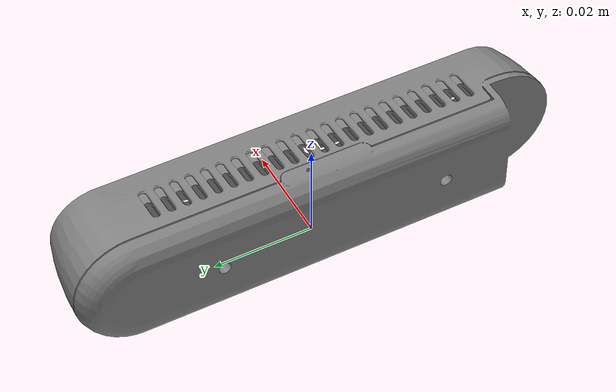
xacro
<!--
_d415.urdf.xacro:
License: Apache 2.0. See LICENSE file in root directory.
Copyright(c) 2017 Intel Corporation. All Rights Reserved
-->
<?xml version="1.0"?>
<robot name="realsense2_camera" xmlns:xacro="http://ros.org/wiki/xacro">
  <xacro:include filename="$(find realsense_description)/urdf/_d415.urdf.xacro"/>

  <!--you only need the following xacro if you want to simulate the camera in gazebo-->
  <xacro:include filename="$(find realsense_description)/urdf/_d415.gazebo.xacro" />

  <link name="base_link" />
  <sensor_d415 parent="base_link" prefix="test_">
    <origin xyz="0 0 0" rpy="0 0 0"/>
  </sensor_d415>

  <!--call the included xacro if you want to simulate the camera in gazebo-->
  <xacro:d415_realsense_gazebo prefix="test_"
  color_width="1920" color_height="1080"
  color_update_rate="20" depth_update_rate="10"/>
</robot>

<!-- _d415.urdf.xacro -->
<robot name="sensor_d415" xmlns:xacro="http://ros.org/wiki/xacro">
  <xacro:macro name="sensor_d415" params="parent *origin prefix">

    <!-- The following values are approximate, and the camera node
     publishing TF values with actual calibrated camera extrinsic values -->
    <xacro:property name="d415_cam_depth_to_left_ir_offset" value="0.0"/>
    <xacro:property name="d415_cam_depth_to_right_ir_offset" value="-0.055"/>
    <xacro:property name="d415_cam_depth_to_color_offset" value="0.015"/>

    <!-- The following values model the aluminum peripherial case for the
    d415 camera, with the camera joint represented by the actual
  	peripherial camera tripod mount -->
    <xacro:property name="d415_cam_width" value="0.099"/>
    <xacro:property name="d415_cam_height" value="0.023"/>
    <xacro:property name="d415_cam_depth" value="0.02005"/>
    <xacro:property name="d415_cam_mount_from_center_offset" value="0.010"/> <!--this is measured from the 1/4-20 mount to the front face of the camera-->
    <!--See depth_start_point.png in the URDF folder for more information on the depth start point-->
    <xacro:property name="d415_depth_start_point_reference" value="-0.0011"/> <!--this is measured from front face of the camera to the depth start point-->

    <!-- The following offset is relative the the physical d415 camera peripherial
  	camera tripod mount -->
    <xacro:property name="d415_cam_depth_px" value="${d415_cam_mount_from_center_offset + d415_depth_start_point_reference}"/>
    <xacro:property name="d415_cam_depth_py" value="0.020"/>
    <xacro:property name="d415_cam_depth_pz" value="${d415_cam_height/2}"/>

    <!-- camera body, with origin at bottom screw mount -->
    <joint name="${prefix}camera_joint" type="fixed">
      <xacro:insert_block name="origin" />
      <parent link="${parent}"/>
      <child link="${prefix}camera_bottom_screw_link" />
    </joint>

    <link name="${prefix}camera_bottom_screw_link">
      <visual>
        <origin xyz="0.0 0.0 0.0" rpy="0 0 0"/>
        <geometry>
          <mesh filename="package://realsense_description/meshes/visual/d415.dae" />
        </geometry>
      </visual>
      <collision>
        <origin xyz="0.0 0.0 ${d415_cam_height/2}" rpy="0 0 0"/>
        <geometry>
          <box size="${d415_cam_depth} ${d415_cam_width} ${d415_cam_height}"/>
        </geometry>
      </collision>
      <inertial>
        <!-- The following are not reliable values, and should not be used for modeling -->
        <mass value="0.564" />
        <origin xyz="0 0 0" />
        <inertia ixx="0.003881243" ixy="0.0" ixz="0.0" iyy="0.000498940" iyz="0.0" izz="0.003879257" />
      </inertial>
    </link>

    <link name="${prefix}camera_link"/>
    <joint name="${prefix}camera_link_joint" type="fixed">
      <origin xyz="${d415_cam_depth_px} ${d415_cam_depth_py} ${d415_cam_depth_pz}" rpy="0 0 0"/>
      <parent link="${prefix}camera_bottom_screw_link"/>
      <child link="${prefix}camera_link" />
    </joint>

    <!-- camera depth joints and links -->
    <joint name="${prefix}camera_depth_joint" type="fixed">
      <origin xyz="${d415_cam_depth_px} ${d415_cam_depth_py} ${d415_cam_depth_pz}" rpy="0 0 0"/>
      <parent link="${prefix}camera_bottom_screw_link"/>
      <child link="${prefix}camera_depth_frame" />
    </joint>
    <link name="${prefix}camera_depth_frame"/>

    <joint name="${prefix}camera_depth_optical_joint" type="fixed">
      <origin xyz="0 0 0" rpy="${-pi/2} 0 ${-pi/2}" />
      <parent link="${prefix}camera_depth_frame" />
      <child link="${prefix}camera_depth_optical_frame" />
    </joint>
    <link name="${prefix}camera_depth_optical_frame"/>

    <!-- camera left IR joints and links -->
    <joint name="${prefix}camera_left_ir_joint" type="fixed">
      <origin xyz="0 ${d415_cam_depth_to_left_ir_offset} 0" rpy="0 0 0" />
      <parent link="${prefix}camera_depth_frame" />
      <child link="${prefix}camera_left_ir_frame" />
    </joint>
    <link name="${prefix}camera_left_ir_frame"/>

    <joint name="${prefix}camera_left_ir_optical_joint" type="fixed">
      <origin xyz="0 0 0" rpy="${-pi/2} 0 ${-pi/2}" />
      <parent link="${prefix}camera_left_ir_frame" />
      <child link="${prefix}camera_left_ir_optical_frame" />
    </joint>
    <link name="${prefix}camera_left_ir_optical_frame"/>

    <!-- camera right IR joints and links -->
    <joint name="${prefix}camera_right_ir_joint" type="fixed">
      <origin xyz="0 ${d415_cam_depth_to_right_ir_offset} 0" rpy="0 0 0" />
      <parent link="${prefix}camera_depth_frame" />
      <child link="${prefix}camera_right_ir_frame" />
    </joint>
    <link name="${prefix}camera_right_ir_frame"/>

    <joint name="${prefix}camera_right_ir_optical_joint" type="fixed">
      <origin xyz="0 0 0" rpy="${-pi/2} 0 ${-pi/2}" />
      <parent link="${prefix}camera_right_ir_frame" />
      <child link="${prefix}camera_right_ir_optical_frame" />
    </joint>
    <link name="${prefix}camera_right_ir_optical_frame"/>

    <!-- camera color joints and links -->
    <joint name="${prefix}camera_color_joint" type="fixed">
      <origin xyz="0 ${d415_cam_depth_to_color_offset} 0" rpy="0 0 0" />
      <parent link="${prefix}camera_depth_frame" />
      <child link="${prefix}camera_color_frame" />
    </joint>
    <link name="${prefix}camera_color_frame"/>

    <joint name="${prefix}camera_color_optical_joint" type="fixed">
      <origin xyz="0 0 0" rpy="${-pi/2} 0 ${-pi/2}" />
      <parent link="${prefix}camera_color_frame" />
      <child link="${prefix}camera_color_optical_frame" />
    </joint>
    <link name="${prefix}camera_color_optical_frame"/>
  </xacro:macro>
</robot>
